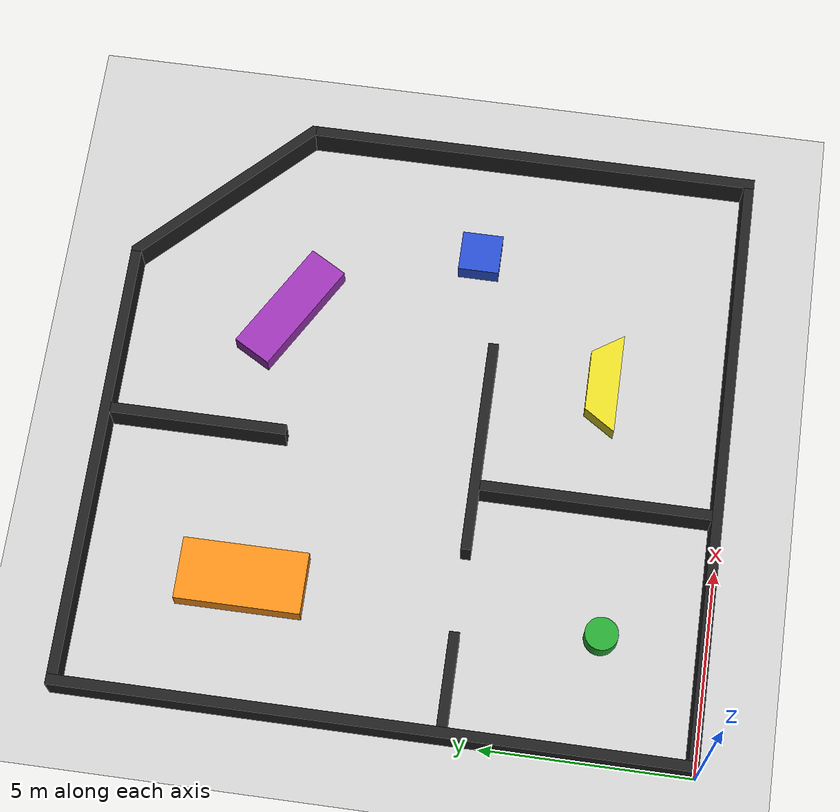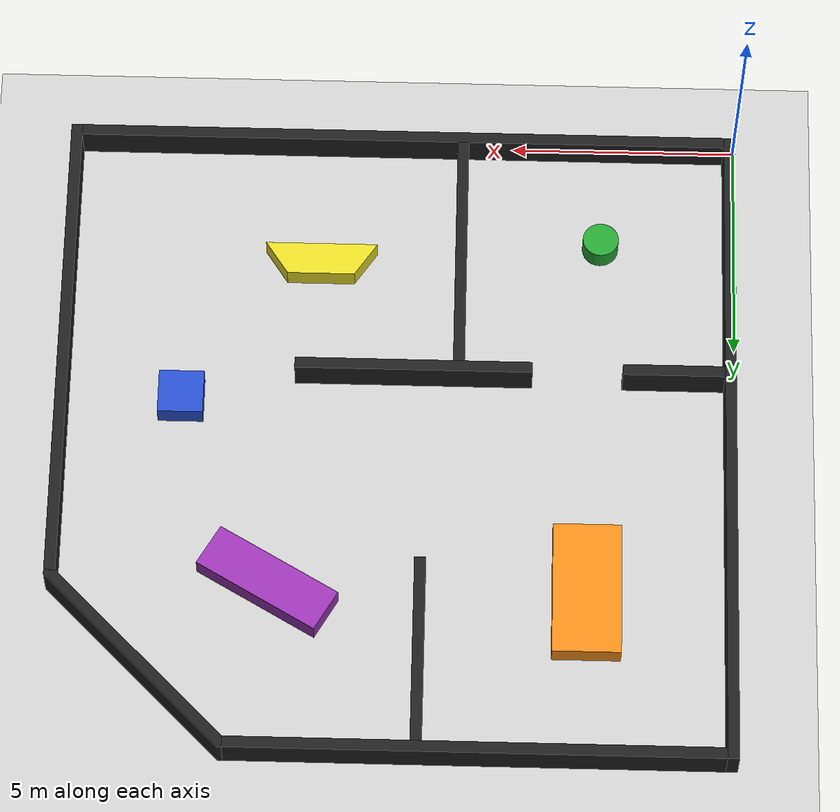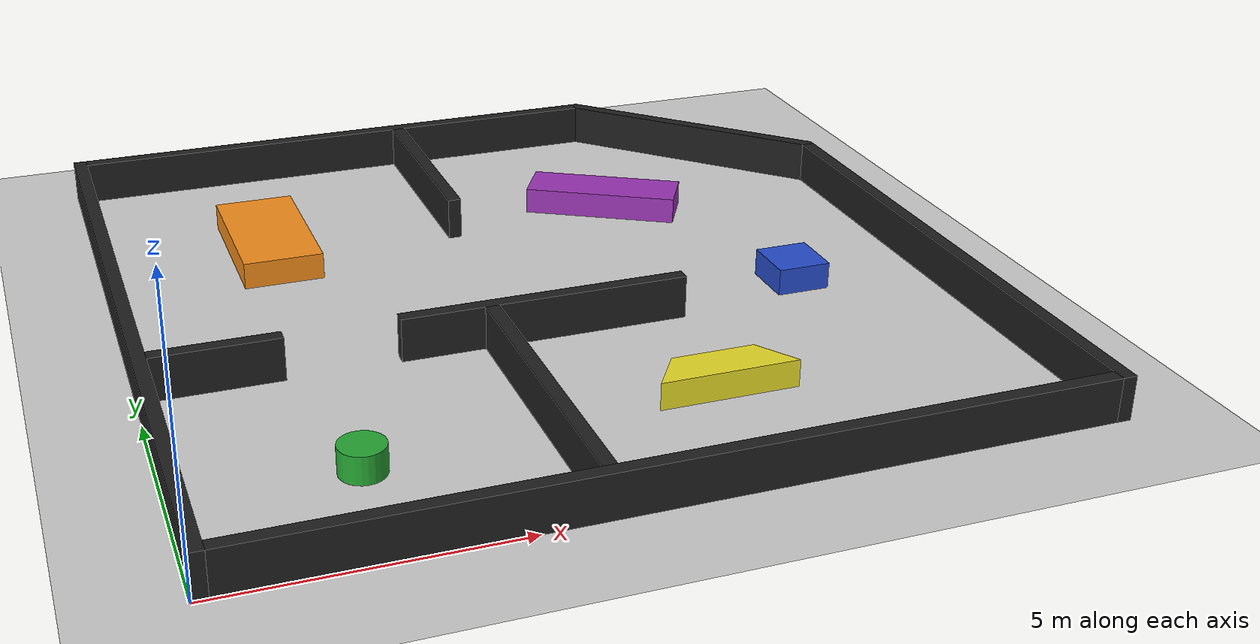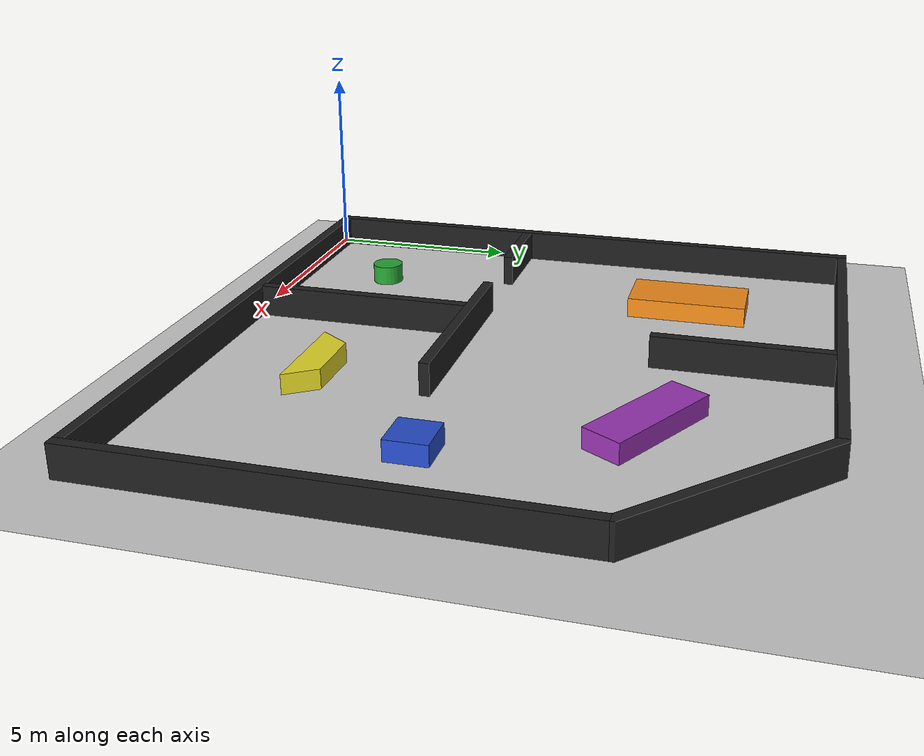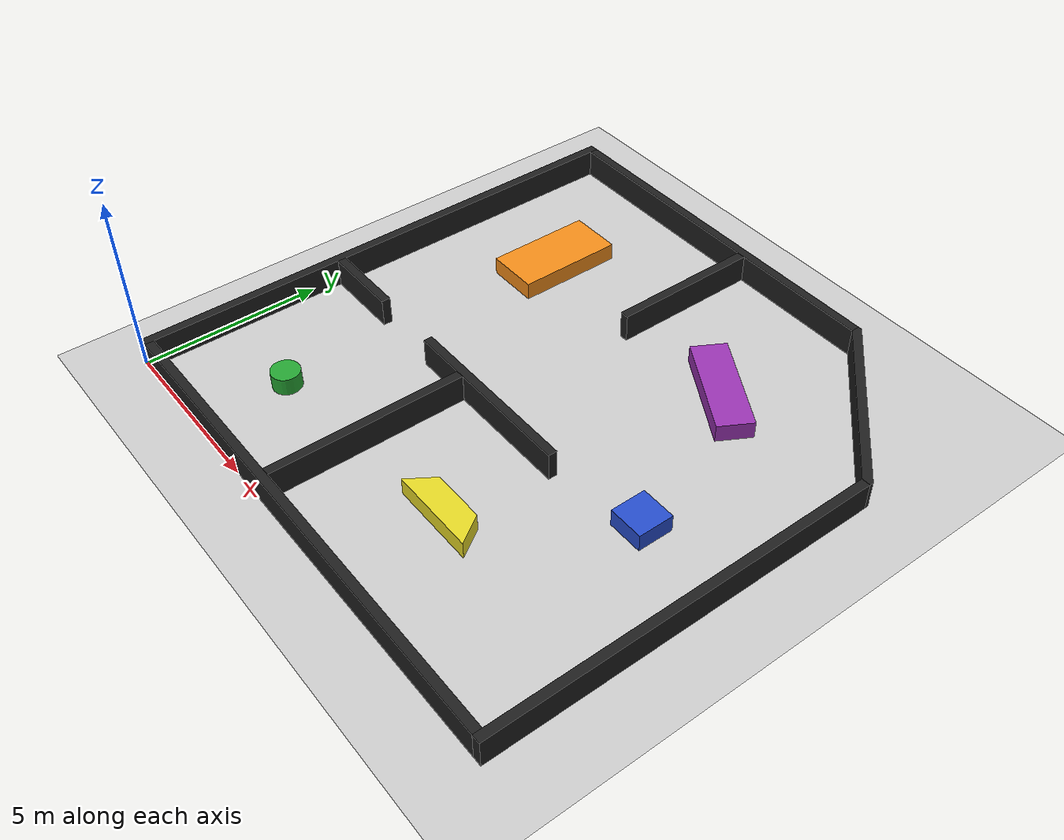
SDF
<sdf version='1.4'>
  <world name='default'>
    <!-- A global light source -->
    <include>
      <uri>model://sun</uri>
    </include>

    <!-- A ground plane -->
    <include>
      <uri>model://ground_plane</uri>
    </include>

    <physics type="ode">
      <real_time_update_rate>1000.0</real_time_update_rate>
      <max_step_size>0.001</max_step_size>
      <real_time_factor>1</real_time_factor>
      <ode>
        <solver>
          <type>quick</type>
          <iters>150</iters>
          <precon_iters>0</precon_iters>
          <sor>1.400000</sor>
          <use_dynamic_moi_rescaling>1</use_dynamic_moi_rescaling>
        </solver>
        <constraints>
          <cfm>0.00001</cfm>
          <erp>0.2</erp>
          <contact_max_correcting_vel>2000.000000</contact_max_correcting_vel>
          <contact_surface_layer>0.01000</contact_surface_layer>
        </constraints>
      </ode>
    </physics>

    <!-- Load world -->
    <include>
      <uri>model://map</uri>
    </include>

    <scene>
      <ambient>0.4 0.4 0.4 1</ambient>
      <background>0.7 0.7 0.7 1</background>
      <shadows>false</shadows>
      <grid>false</grid>
    </scene>

    <gui fullscreen='0'>
      <camera name='user_camera'>
        <pose frame=''>16.63 -9.93299 15.6999 0 0.724 1.968</pose>
        <view_controller>orbit</view_controller>
      </camera>
    </gui>

  </world>
</sdf>

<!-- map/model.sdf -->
<sdf version='1.4'>
  <model name="map">
    <static>true</static>
      <link name='map'>
        <!-- Walls -->
        <collision name='wall_1'>
          <pose>0 0 0 0 0 0</pose>
          <geometry>
            <mesh>
              <uri>model://map/meshes/wall_1.dae</uri>
              <scale>1 1 1</scale>
            </mesh>
          </geometry>
          <max_contacts>10</max_contacts>
          <surface>
            <bounce/>
            <friction>
              <ode/>
            </friction>
            <contact>
              <ode/>
            </contact>
          </surface>
        </collision>

        <visual name='wall_1'>
          <pose>0 0 0 0 0 0</pose>
          <geometry>
            <mesh>
              <uri>model://map/meshes/wall_1.dae</uri>
              <scale>1 1 1</scale>
            </mesh>
          </geometry>
          <material>
            <script>
              <uri>file://media/materials/scripts/gazebo.material</uri>
              <name>Gazebo/FlatBlack</name>
            </script>
          </material>
        </visual>

        <collision name='wall_2'>
          <pose>0 0 0 0 0 0</pose>
          <geometry>
            <mesh>
              <uri>model://map/meshes/wall_2.dae</uri>
              <scale>1 1 1</scale>
            </mesh>
          </geometry>
          <max_contacts>10</max_contacts>
          <surface>
            <bounce/>
            <friction>
              <ode/>
            </friction>
            <contact>
              <ode/>
            </contact>
          </surface>
        </collision>

        <visual name='wall_2'>
          <pose>0 0 0 0 0 0</pose>
          <geometry>
            <mesh>
              <uri>model://map/meshes/wall_2.dae</uri>
              <scale>1 1 1</scale>
            </mesh>
          </geometry>
          <material>
            <script>
              <uri>file://media/materials/scripts/gazebo.material</uri>
              <name>Gazebo/FlatBlack</name>
            </script>
          </material>
        </visual>

        <collision name='wall_3'>
          <pose>0 0 0 0 0 0</pose>
          <geometry>
            <mesh>
              <uri>model://map/meshes/wall_3.dae</uri>
              <scale>1 1 1</scale>
            </mesh>
          </geometry>
          <max_contacts>10</max_contacts>
          <surface>
            <bounce/>
            <friction>
              <ode/>
            </friction>
            <contact>
              <ode/>
            </contact>
          </surface>
        </collision>

        <visual name='wall_3'>
          <pose>0 0 0 0 0 0</pose>
          <geometry>
            <mesh>
              <uri>model://map/meshes/wall_3.dae</uri>
              <scale>1 1 1</scale>
            </mesh>
          </geometry>
          <material>
            <script>
              <uri>file://media/materials/scripts/gazebo.material</uri>
              <name>Gazebo/FlatBlack</name>
            </script>
          </material>
        </visual>

        <collision name='wall_4'>
          <pose>0 0 0 0 0 0</pose>
          <geometry>
            <mesh>
              <uri>model://map/meshes/wall_4.dae</uri>
              <scale>1 1 1</scale>
            </mesh>
          </geometry>
          <max_contacts>10</max_contacts>
          <surface>
            <bounce/>
            <friction>
              <ode/>
            </friction>
            <contact>
              <ode/>
            </contact>
          </surface>
        </collision>

        <visual name='wall_4'>
          <pose>0 0 0 0 0 0</pose>
          <geometry>
            <mesh>
              <uri>model://map/meshes/wall_4.dae</uri>
              <scale>1 1 1</scale>
            </mesh>
          </geometry>
          <material>
            <script>
              <uri>file://media/materials/scripts/gazebo.material</uri>
              <name>Gazebo/FlatBlack</name>
            </script>
          </material>
        </visual>

        <collision name='wall_5'>
          <pose>0 0 0 0 0 0</pose>
          <geometry>
            <mesh>
              <uri>model://map/meshes/wall_5.dae</uri>
              <scale>1 1 1</scale>
            </mesh>
          </geometry>
          <max_contacts>10</max_contacts>
          <surface>
            <bounce/>
            <friction>
              <ode/>
            </friction>
            <contact>
              <ode/>
            </contact>
          </surface>
        </collision>

        <visual name='wall_5'>
          <pose>0 0 0 0 0 0</pose>
          <geometry>
            <mesh>
              <uri>model://map/meshes/wall_5.dae</uri>
              <scale>1 1 1</scale>
            </mesh>
          </geometry>
          <material>
            <script>
              <uri>file://media/materials/scripts/gazebo.material</uri>
              <name>Gazebo/FlatBlack</name>
            </script>
          </material>
        </visual>

        <collision name='wall_6'>
          <pose>0 0 0 0 0 0</pose>
          <geometry>
            <mesh>
              <uri>model://map/meshes/wall_6.dae</uri>
              <scale>1 1 1</scale>
            </mesh>
          </geometry>
          <max_contacts>10</max_contacts>
          <surface>
            <bounce/>
            <friction>
              <ode/>
            </friction>
            <contact>
              <ode/>
            </contact>
          </surface>
        </collision>

        <visual name='wall_6'>
          <pose>0 0 0 0 0 0</pose>
          <geometry>
            <mesh>
              <uri>model://map/meshes/wall_6.dae</uri>
              <scale>1 1 1</scale>
            </mesh>
          </geometry>
          <material>
            <script>
              <uri>file://media/materials/scripts/gazebo.material</uri>
              <name>Gazebo/FlatBlack</name>
            </script>
          </material>
        </visual>

        <collision name='wall_7'>
          <pose>0 0 0 0 0 0</pose>
          <geometry>
            <mesh>
              <uri>model://map/meshes/wall_7.dae</uri>
              <scale>1 1 1</scale>
            </mesh>
          </geometry>
          <max_contacts>10</max_contacts>
          <surface>
            <bounce/>
            <friction>
              <ode/>
            </friction>
            <contact>
              <ode/>
            </contact>
          </surface>
        </collision>

        <visual name='wall_7'>
          <pose>0 0 0 0 0 0</pose>
          <geometry>
            <mesh>
              <uri>model://map/meshes/wall_7.dae</uri>
              <scale>1 1 1</scale>
            </mesh>
          </geometry>
          <material>
            <script>
              <uri>file://media/materials/scripts/gazebo.material</uri>
              <name>Gazebo/FlatBlack</name>
            </script>
          </material>
        </visual>

        <collision name='wall_8'>
          <pose>0 0 0 0 0 0</pose>
          <geometry>
            <mesh>
              <uri>model://map/meshes/wall_8.dae</uri>
              <scale>1 1 1</scale>
            </mesh>
          </geometry>
          <max_contacts>10</max_contacts>
          <surface>
            <bounce/>
            <friction>
              <ode/>
            </friction>
            <contact>
              <ode/>
            </contact>
          </surface>
        </collision>

        <visual name='wall_8'>
          <pose>0 0 0 0 0 0</pose>
          <geometry>
            <mesh>
              <uri>model://map/meshes/wall_8.dae</uri>
              <scale>1 1 1</scale>
            </mesh>
          </geometry>
          <material>
            <script>
              <uri>file://media/materials/scripts/gazebo.material</uri>
              <name>Gazebo/FlatBlack</name>
            </script>
          </material>
        </visual>

        <collision name='wall_9'>
          <pose>0 0 0 0 0 0</pose>
          <geometry>
            <mesh>
              <uri>model://map/meshes/wall_9.dae</uri>
              <scale>1 1 1</scale>
            </mesh>
          </geometry>
          <max_contacts>10</max_contacts>
          <surface>
            <bounce/>
            <friction>
              <ode/>
            </friction>
            <contact>
              <ode/>
            </contact>
          </surface>
        </collision>

        <visual name='wall_9'>
          <pose>0 0 0 0 0 0</pose>
          <geometry>
            <mesh>
              <uri>model://map/meshes/wall_9.dae</uri>
              <scale>1 1 1</scale>
            </mesh>
          </geometry>
          <material>
            <script>
              <uri>file://media/materials/scripts/gazebo.material</uri>
              <name>Gazebo/FlatBlack</name>
            </script>
          </material>
        </visual>

        <!-- Obstacles -->
        <collision name='obstacle_1'>
          <pose>0 0 0 0 0 0</pose>
          <geometry>
            <mesh>
              <uri>model://map/meshes/obstacle_1.dae</uri>
              <scale>1 1 1</scale>
            </mesh>
          </geometry>
          <max_contacts>10</max_contacts>
          <surface>
            <bounce/>
            <friction>
              <ode/>
            </friction>
            <contact>
              <ode/>
            </contact>
          </surface>
        </collision>

        <visual name='obstacle_1'>
          <pose>0 0 0 0 0 0</pose>
          <geometry>
            <mesh>
              <uri>model://map/meshes/obstacle_1.dae</uri>
              <scale>1 1 1</scale>
            </mesh>
          </geometry>
          <material>
            <script>
              <uri>file://media/materials/scripts/gazebo.material</uri>
              <name>Gazebo/Green</name>
            </script>
          </material>
        </visual>

        <collision name='obstacle_2'>
          <pose>0 0 0 0 0 0</pose>
          <geometry>
            <mesh>
              <uri>model://map/meshes/obstacle_2.dae</uri>
              <scale>1 1 1</scale>
            </mesh>
          </geometry>
          <max_contacts>10</max_contacts>
          <surface>
            <bounce/>
            <friction>
              <ode/>
            </friction>
            <contact>
              <ode/>
            </contact>
          </surface>
        </collision>

        <visual name='obstacle_2'>
          <pose>0 0 0 0 0 0</pose>
          <geometry>
            <mesh>
              <uri>model://map/meshes/obstacle_2.dae</uri>
              <scale>1 1 1</scale>
            </mesh>
          </geometry>
          <material>
            <script>
              <uri>file://media/materials/scripts/gazebo.material</uri>
              <name>Gazebo/Orange</name>
            </script>
          </material>
        </visual>

        <collision name='obstacle_3'>
          <pose>0 0 0 0 0 0</pose>
          <geometry>
            <mesh>
              <uri>model://map/meshes/obstacle_3.dae</uri>
              <scale>1 1 1</scale>
            </mesh>
          </geometry>
          <max_contacts>10</max_contacts>
          <surface>
            <bounce/>
            <friction>
              <ode/>
            </friction>
            <contact>
              <ode/>
            </contact>
          </surface>
        </collision>

        <visual name='obstacle_3'>
          <pose>0 0 0 0 0 0</pose>
          <geometry>
            <mesh>
              <uri>model://map/meshes/obstacle_3.dae</uri>
              <scale>1 1 1</scale>
            </mesh>
          </geometry>
          <material>
            <script>
              <uri>file://media/materials/scripts/gazebo.material</uri>
              <name>Gazebo/Yellow</name>
            </script>
          </material>
        </visual>

        <collision name='obstacle_4'>
          <pose>0 0 0 0 0 0</pose>
          <geometry>
            <mesh>
              <uri>model://map/meshes/obstacle_4.dae</uri>
              <scale>1 1 1</scale>
            </mesh>
          </geometry>
          <max_contacts>10</max_contacts>
          <surface>
            <bounce/>
            <friction>
              <ode/>
            </friction>
            <contact>
              <ode/>
            </contact>
          </surface>
        </collision>

        <visual name='obstacle_4'>
          <pose>0 0 0 0 0 0</pose>
          <geometry>
            <mesh>
              <uri>model://map/meshes/obstacle_4.dae</uri>
              <scale>1 1 1</scale>
            </mesh>
          </geometry>
          <material>
            <script>
              <uri>file://media/materials/scripts/gazebo.material</uri>
              <name>Gazebo/Blue</name>
            </script>
          </material>
        </visual>

        <collision name='obstacle_5'>
          <pose>0 0 0 0 0 0</pose>
          <geometry>
            <mesh>
              <uri>model://map/meshes/obstacle_5.dae</uri>
              <scale>1 1 1</scale>
            </mesh>
          </geometry>
          <max_contacts>10</max_contacts>
          <surface>
            <bounce/>
            <friction>
              <ode/>
            </friction>
            <contact>
              <ode/>
            </contact>
          </surface>
        </collision>

        <visual name='obstacle_5'>
          <pose>0 0 0 0 0 0</pose>
          <geometry>
            <mesh>
              <uri>model://map/meshes/obstacle_5.dae</uri>
              <scale>1 1 1</scale>
            </mesh>
          </geometry>
          <material>
            <script>
              <uri>file://media/materials/scripts/gazebo.material</uri>
              <name>Gazebo/Purple</name>
            </script>
          </material>
        </visual>
  </link>
  </model>
</sdf>
